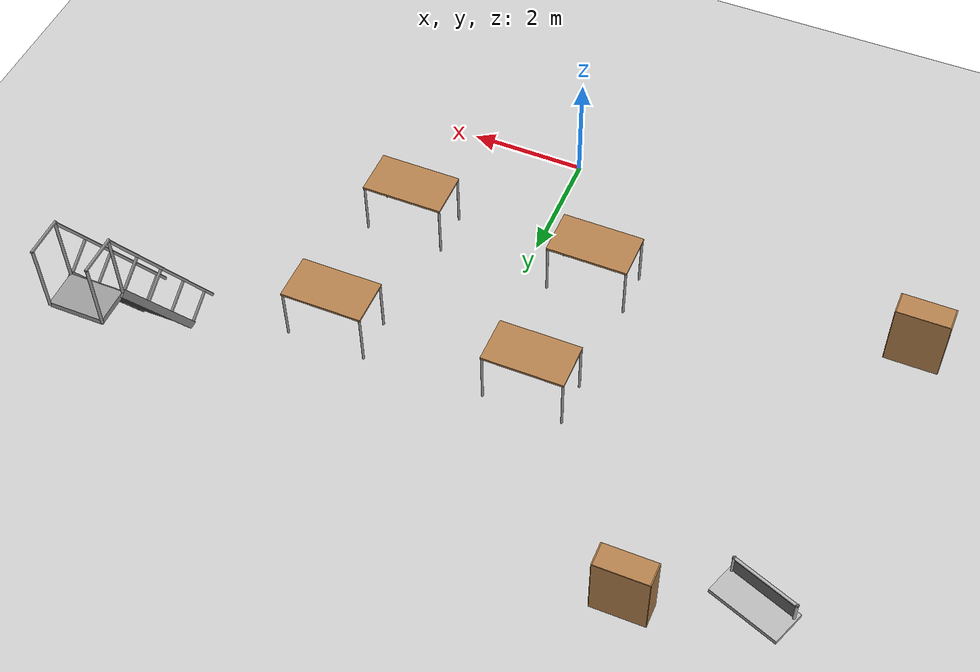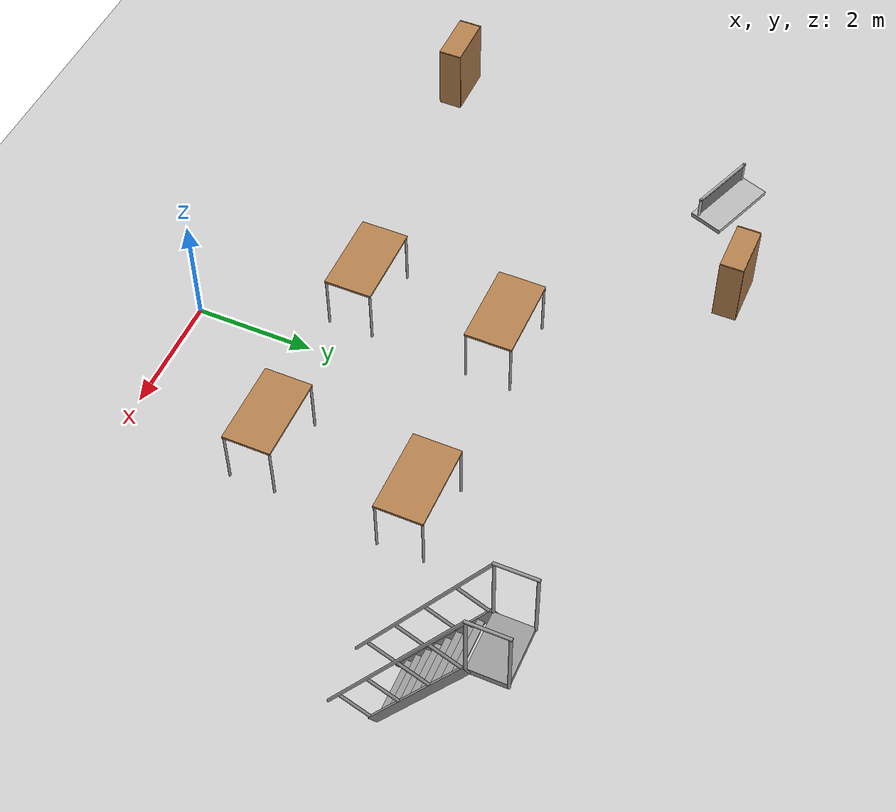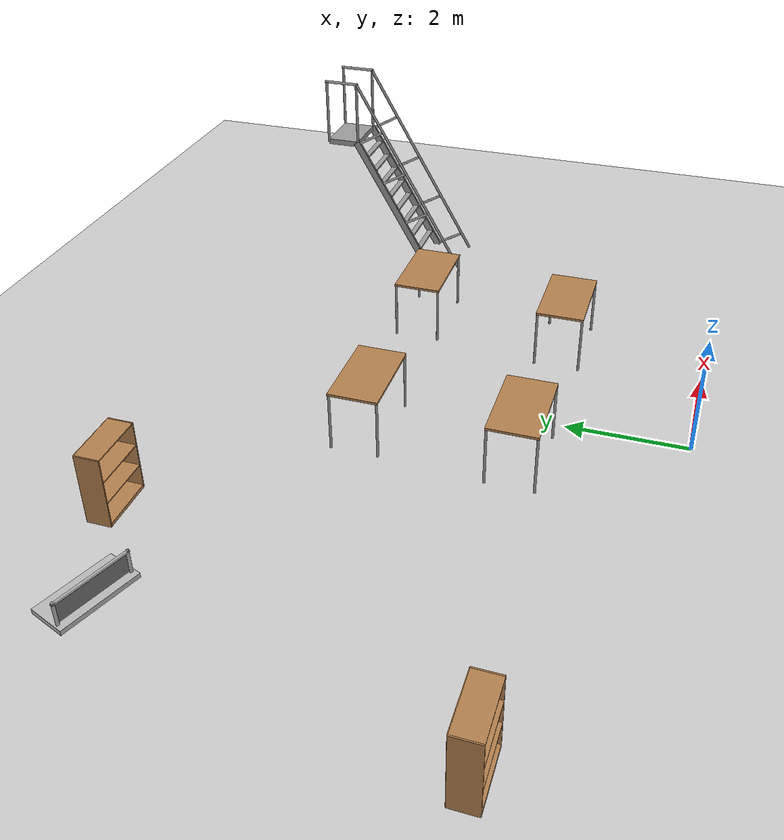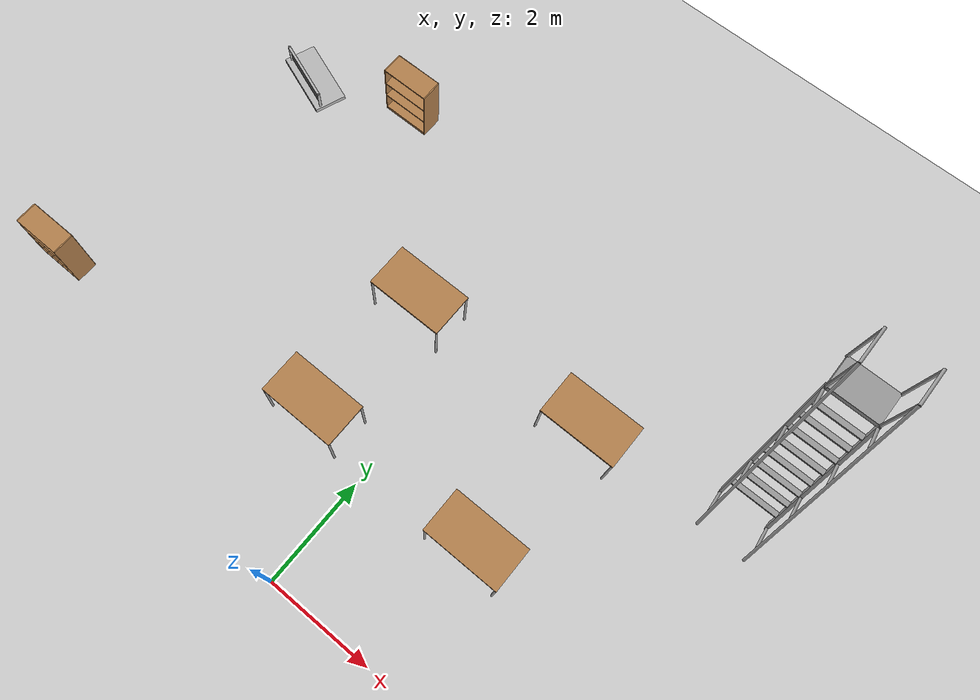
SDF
<sdf version="1.6">
 <world name="default">
  <model name="ground_plane">
   <static>1</static>
   <link name="link">
    <collision name="collision">
     <geometry><plane><normal>0 0 1</normal><size>100 100</size></plane></geometry>
     <surface><friction><ode><mu>100</mu><mu2>50</mu2></ode></friction></surface>
    </collision>
    <visual name="visual">
     <cast_shadows>0</cast_shadows>
     <geometry><plane><normal>0 0 1</normal><size>100 100</size></plane></geometry>
     <material>
      <script><uri>file://media/materials/scripts/gazebo.material</uri><name>Gazebo/Grey</name></script>
     </material>
    </visual>
   </link>
  </model>
  <model name="bookshelf">
   <static>1</static>
   <link name="link">
    <inertial><mass>1</mass></inertial>
    <collision name="back">
     <pose>0 0.005 0.6 0 -0 0</pose>
     <geometry><box><size>0.9 0.01 1.2</size></box></geometry>
    </collision>
    <visual name="visual1">
     <pose>0 0.005 0.6 0 -0 0</pose>
     <geometry><box><size>0.9 0.01 1.2</size></box></geometry>
     <material>
      <script><uri>file://media/materials/scripts/gazebo.material</uri><name>Gazebo/Wood</name></script>
     </material>
    </visual>
    <collision name="left_side">
     <pose>0.45 -0.195 0.6 0 -0 0</pose>
     <geometry><box><size>0.02 0.4 1.2</size></box></geometry>
    </collision>
    <visual name="visual2">
     <pose>0.45 -0.195 0.6 0 -0 0</pose>
     <geometry><box><size>0.02 0.4 1.2</size></box></geometry>
     <material>
      <script><uri>file://media/materials/scripts/gazebo.material</uri><name>Gazebo/Wood</name></script>
     </material>
    </visual>
    <collision name="right_side">
     <pose>-0.45 -0.195 0.6 0 -0 0</pose>
     <geometry><box><size>0.02 0.4 1.2</size></box></geometry>
    </collision>
    <visual name="visual3">
     <pose>-0.45 -0.195 0.6 0 -0 0</pose>
     <geometry><box><size>0.02 0.4 1.2</size></box></geometry>
     <material>
      <script><uri>file://media/materials/scripts/gazebo.material</uri><name>Gazebo/Wood</name></script>
     </material>
    </visual>
    <collision name="bottom">
     <pose>0 -0.195 0.03 0 -0 0</pose>
     <geometry><box><size>0.88 0.4 0.06</size></box></geometry>
    </collision>
    <visual name="visual4">
     <pose>0 -0.195 0.03 0 -0 0</pose>
     <geometry><box><size>0.88 0.4 0.06</size></box></geometry>
     <material>
      <script><uri>file://media/materials/scripts/gazebo.material</uri><name>Gazebo/Wood</name></script>
     </material>
    </visual>
    <collision name="top">
     <pose>0 -0.195 1.19 0 -0 0</pose>
     <geometry><box><size>0.88 0.4 0.02</size></box></geometry>
    </collision>
    <visual name="visual5">
     <pose>0 -0.195 1.19 0 -0 0</pose>
     <geometry><box><size>0.88 0.4 0.02</size></box></geometry>
     <material>
      <script><uri>file://media/materials/scripts/gazebo.material</uri><name>Gazebo/Wood</name></script>
     </material>
    </visual>
    <collision name="low_shelf">
     <pose>0 -0.195 0.43 0 -0 0</pose>
     <geometry><box><size>0.88 0.4 0.02</size></box></geometry>
    </collision>
    <visual name="visual6">
     <pose>0 -0.195 0.43 0 -0 0</pose>
     <geometry><box><size>0.88 0.4 0.02</size></box></geometry>
     <material>
      <script><uri>file://media/materials/scripts/gazebo.material</uri><name>Gazebo/Wood</name></script>
     </material>
    </visual>
    <collision name="high_shelf">
     <pose>0 -0.195 0.8 0 -0 0</pose>
     <geometry><box><size>0.88 0.4 0.02</size></box></geometry>
    </collision>
    <visual name="visual7">
     <pose>0 -0.195 0.8 0 -0 0</pose>
     <geometry><box><size>0.88 0.4 0.02</size></box></geometry>
     <material>
      <script><uri>file://media/materials/scripts/gazebo.material</uri><name>Gazebo/Wood</name></script>
     </material>
    </visual>
   </link>
   <pose>-6.54502 1.97789 0 0 -0 0</pose>
  </model>
  <model name="bookshelf_0">
   <static>1</static>
   <link name="link">
    <inertial><mass>1</mass></inertial>
    <collision name="back">
     <pose>0 0.005 0.6 0 -0 0</pose>
     <geometry><box><size>0.9 0.01 1.2</size></box></geometry>
    </collision>
    <visual name="visual1">
     <pose>0 0.005 0.6 0 -0 0</pose>
     <geometry><box><size>0.9 0.01 1.2</size></box></geometry>
     <material>
      <script><uri>file://media/materials/scripts/gazebo.material</uri><name>Gazebo/Wood</name></script>
     </material>
    </visual>
    <collision name="left_side">
     <pose>0.45 -0.195 0.6 0 -0 0</pose>
     <geometry><box><size>0.02 0.4 1.2</size></box></geometry>
    </collision>
    <visual name="visual2">
     <pose>0.45 -0.195 0.6 0 -0 0</pose>
     <geometry><box><size>0.02 0.4 1.2</size></box></geometry>
     <material>
      <script><uri>file://media/materials/scripts/gazebo.material</uri><name>Gazebo/Wood</name></script>
     </material>
    </visual>
    <collision name="right_side">
     <pose>-0.45 -0.195 0.6 0 -0 0</pose>
     <geometry><box><size>0.02 0.4 1.2</size></box></geometry>
    </collision>
    <visual name="visual3">
     <pose>-0.45 -0.195 0.6 0 -0 0</pose>
     <geometry><box><size>0.02 0.4 1.2</size></box></geometry>
     <material>
      <script><uri>file://media/materials/scripts/gazebo.material</uri><name>Gazebo/Wood</name></script>
     </material>
    </visual>
    <collision name="bottom">
     <pose>0 -0.195 0.03 0 -0 0</pose>
     <geometry><box><size>0.88 0.4 0.06</size></box></geometry>
    </collision>
    <visual name="visual4">
     <pose>0 -0.195 0.03 0 -0 0</pose>
     <geometry><box><size>0.88 0.4 0.06</size></box></geometry>
     <material>
      <script><uri>file://media/materials/scripts/gazebo.material</uri><name>Gazebo/Wood</name></script>
     </material>
    </visual>
    <collision name="top">
     <pose>0 -0.195 1.19 0 -0 0</pose>
     <geometry><box><size>0.88 0.4 0.02</size></box></geometry>
    </collision>
    <visual name="visual5">
     <pose>0 -0.195 1.19 0 -0 0</pose>
     <geometry><box><size>0.88 0.4 0.02</size></box></geometry>
     <material>
      <script><uri>file://media/materials/scripts/gazebo.material</uri><name>Gazebo/Wood</name></script>
     </material>
    </visual>
    <collision name="low_shelf">
     <pose>0 -0.195 0.43 0 -0 0</pose>
     <geometry><box><size>0.88 0.4 0.02</size></box></geometry>
    </collision>
    <visual name="visual6">
     <pose>0 -0.195 0.43 0 -0 0</pose>
     <geometry><box><size>0.88 0.4 0.02</size></box></geometry>
     <material>
      <script><uri>file://media/materials/scripts/gazebo.material</uri><name>Gazebo/Wood</name></script>
     </material>
    </visual>
    <collision name="high_shelf">
     <pose>0 -0.195 0.8 0 -0 0</pose>
     <geometry><box><size>0.88 0.4 0.02</size></box></geometry>
    </collision>
    <visual name="visual7">
     <pose>0 -0.195 0.8 0 -0 0</pose>
     <geometry><box><size>0.88 0.4 0.02</size></box></geometry>
     <material>
      <script><uri>file://media/materials/scripts/gazebo.material</uri><name>Gazebo/Wood</name></script>
     </material>
    </visual>
   </link>
   <pose>-3.77767 8.09982 0 0 -0 0</pose>
  </model>
  <model name="frc2016_lowbar">
   <link name="base">
    <inertial>
     <mass>50</mass>
     <inertia>
      <ixx>0.035543</ixx>
      <ixy>0</ixy>
      <ixz>0</ixz>
      <iyy>0.134412</iyy>
      <iyz>0</iyz>
      <izz>0.165376</izz>
     </inertia>
    </inertial>
    <visual name="platform">
     <pose>0 0 0.039065 0 -0 0</pose>
     <geometry><box><size>1.26 0.5996 0.07813</size></box></geometry>
    </visual>
    <collision name="platform">
     <pose>0 0 0.039065 0 -0 0</pose>
     <geometry><box><size>1.27 0.6096 0.07813</size></box></geometry>
    </collision>
    <visual name="right_column">
     <pose>-0.57845 -0.18464 0.26863 0 -0 0</pose>
     <geometry><cylinder><radius>0.0254</radius><length>0.381</length></cylinder></geometry>
    </visual>
    <collision name="right_column">
     <pose>-0.57845 -0.18464 0.26863 0 -0 0</pose>
     <geometry><cylinder><radius>0.0254</radius><length>0.381</length></cylinder></geometry>
    </collision>
    <visual name="left_column">
     <pose>0.57845 -0.18464 0.26863 0 -0 0</pose>
     <geometry><cylinder><radius>0.0254</radius><length>0.381</length></cylinder></geometry>
    </visual>
    <collision name="left_column">
     <pose>0.57845 -0.18464 0.26863 0 -0 0</pose>
     <geometry><cylinder><radius>0.0254</radius><length>0.381</length></cylinder></geometry>
    </collision>
    <visual name="horizontal">
     <pose>0 -0.18464 0.43556 0 1.5707 0</pose>
     <geometry><cylinder><radius>0.0254</radius><length>1.2018</length></cylinder></geometry>
    </visual>
    <collision name="horizontal">
     <pose>0 -0.18464 0.43556 0 1.5707 0</pose>
     <geometry><cylinder><radius>0.0254</radius><length>1.2018</length></cylinder></geometry>
    </collision>
   </link>
   <link name="wall">
    <pose>0 -0.1778 0.24323 0 -0 0</pose>
    <inertial>
     <mass>1</mass>
     <inertia>
      <ixx>0.00774528</ixx>
      <ixy>0</ixy>
      <ixz>0</ixz>
      <iyy>0.116613</iyy>
      <iyz>0</iyz>
      <izz>0.108874</izz>
     </inertia>
    </inertial>
    <visual name="visual">
     <geometry><box><size>1.1176 0.00635 0.3</size></box></geometry>
     <material><ambient>0.46 0.46 0.46 1</ambient><diffuse>0.46 0.46 0.46 1</diffuse></material>
    </visual>
    <collision name="collision"><geometry><box><size>1.143 0.00635 0.3</size></box></geometry></collision>
   </link>
   <joint name="bar_joint" type="revolute">
    <pose>0 0 0.36378 0 -0 0</pose>
    <parent>base</parent>
    <child>wall</child>
    <axis>
     <xyz>1 0 0</xyz>
     <limit><lower>-1.5707</lower><upper>1.5707</upper></limit>
     <use_parent_model_frame>0</use_parent_model_frame>
     <dynamics><spring_reference>0</spring_reference><spring_stiffness>0</spring_stiffness></dynamics>
    </axis>
   </joint>
   <pose>-5.58311 7.22185 0.149998 1e-06 -6e-06 -0.356761</pose>
  </model>
  <model name="ladder_60deg_2rails">
   <static>1</static>
   <link name="step0">
    <pose>0 0.15396 0.266667 0 -0 0</pose>
    <inertial>
     <mass>9.75482</mass>
     <inertia>
      <ixx>0.00957124</ixx>
      <iyy>0.65963</iyy>
      <izz>0.666842</izz>
      <ixy>0</ixy>
      <ixz>0</ixz>
      <iyz>0</iyz>
     </inertia>
    </inertial>
    <collision name="collision"><geometry><box><size>0.9 0.1016 0.0381</size></box></geometry></collision>
    <visual name="visual">
     <geometry><box><size>0.9 0.1016 0.0381</size></box></geometry>
     <material>
      <script><uri>file://media/materials/scripts/gazebo.material</uri><name>Gazebo/Grey</name></script>
     </material>
    </visual>
   </link>
   <link name="step1">
    <pose>0 0.30792 0.533333 0 -0 0</pose>
    <inertial>
     <mass>9.75482</mass>
     <inertia>
      <ixx>0.00957124</ixx>
      <iyy>0.65963</iyy>
      <izz>0.666842</izz>
      <ixy>0</ixy>
      <ixz>0</ixz>
      <iyz>0</iyz>
     </inertia>
    </inertial>
    <collision name="collision"><geometry><box><size>0.9 0.1016 0.0381</size></box></geometry></collision>
    <visual name="visual">
     <geometry><box><size>0.9 0.1016 0.0381</size></box></geometry>
     <material>
      <script><uri>file://media/materials/scripts/gazebo.material</uri><name>Gazebo/Grey</name></script>
     </material>
    </visual>
   </link>
   <link name="step2">
    <pose>0 0.46188 0.8 0 -0 0</pose>
    <inertial>
     <mass>9.75482</mass>
     <inertia>
      <ixx>0.00957124</ixx>
      <iyy>0.65963</iyy>
      <izz>0.666842</izz>
      <ixy>0</ixy>
      <ixz>0</ixz>
      <iyz>0</iyz>
     </inertia>
    </inertial>
    <collision name="collision"><geometry><box><size>0.9 0.1016 0.0381</size></box></geometry></collision>
    <visual name="visual">
     <geometry><box><size>0.9 0.1016 0.0381</size></box></geometry>
     <material>
      <script><uri>file://media/materials/scripts/gazebo.material</uri><name>Gazebo/Grey</name></script>
     </material>
    </visual>
   </link>
   <link name="step3">
    <pose>0 0.61584 1.06667 0 -0 0</pose>
    <inertial>
     <mass>9.75482</mass>
     <inertia>
      <ixx>0.00957124</ixx>
      <iyy>0.65963</iyy>
      <izz>0.666842</izz>
      <ixy>0</ixy>
      <ixz>0</ixz>
      <iyz>0</iyz>
     </inertia>
    </inertial>
    <collision name="collision"><geometry><box><size>0.9 0.1016 0.0381</size></box></geometry></collision>
    <visual name="visual">
     <geometry><box><size>0.9 0.1016 0.0381</size></box></geometry>
     <material>
      <script><uri>file://media/materials/scripts/gazebo.material</uri><name>Gazebo/Grey</name></script>
     </material>
    </visual>
   </link>
   <link name="step4">
    <pose>0 0.7698 1.33333 0 -0 0</pose>
    <inertial>
     <mass>9.75482</mass>
     <inertia>
      <ixx>0.00957124</ixx>
      <iyy>0.65963</iyy>
      <izz>0.666842</izz>
      <ixy>0</ixy>
      <ixz>0</ixz>
      <iyz>0</iyz>
     </inertia>
    </inertial>
    <collision name="collision"><geometry><box><size>0.9 0.1016 0.0381</size></box></geometry></collision>
    <visual name="visual">
     <geometry><box><size>0.9 0.1016 0.0381</size></box></geometry>
     <material>
      <script><uri>file://media/materials/scripts/gazebo.material</uri><name>Gazebo/Grey</name></script>
     </material>
    </visual>
   </link>
   <link name="step5">
    <pose>0 0.92376 1.6 0 -0 0</pose>
    <inertial>
     <mass>9.75482</mass>
     <inertia>
      <ixx>0.00957124</ixx>
      <iyy>0.65963</iyy>
      <izz>0.666842</izz>
      <ixy>0</ixy>
      <ixz>0</ixz>
      <iyz>0</iyz>
     </inertia>
    </inertial>
    <collision name="collision"><geometry><box><size>0.9 0.1016 0.0381</size></box></geometry></collision>
    <visual name="visual">
     <geometry><box><size>0.9 0.1016 0.0381</size></box></geometry>
     <material>
      <script><uri>file://media/materials/scripts/gazebo.material</uri><name>Gazebo/Grey</name></script>
     </material>
    </visual>
   </link>
   <link name="step6">
    <pose>0 1.07772 1.86667 0 -0 0</pose>
    <inertial>
     <mass>9.75482</mass>
     <inertia>
      <ixx>0.00957124</ixx>
      <iyy>0.65963</iyy>
      <izz>0.666842</izz>
      <ixy>0</ixy>
      <ixz>0</ixz>
      <iyz>0</iyz>
     </inertia>
    </inertial>
    <collision name="collision"><geometry><box><size>0.9 0.1016 0.0381</size></box></geometry></collision>
    <visual name="visual">
     <geometry><box><size>0.9 0.1016 0.0381</size></box></geometry>
     <material>
      <script><uri>file://media/materials/scripts/gazebo.material</uri><name>Gazebo/Grey</name></script>
     </material>
    </visual>
   </link>
   <link name="step7">
    <pose>0 1.23168 2.13333 0 -0 0</pose>
    <inertial>
     <mass>9.75482</mass>
     <inertia>
      <ixx>0.00957124</ixx>
      <iyy>0.65963</iyy>
      <izz>0.666842</izz>
      <ixy>0</ixy>
      <ixz>0</ixz>
      <iyz>0</iyz>
     </inertia>
    </inertial>
    <collision name="collision"><geometry><box><size>0.9 0.1016 0.0381</size></box></geometry></collision>
    <visual name="visual">
     <geometry><box><size>0.9 0.1016 0.0381</size></box></geometry>
     <material>
      <script><uri>file://media/materials/scripts/gazebo.material</uri><name>Gazebo/Grey</name></script>
     </material>
    </visual>
   </link>
   <link name="landing">
    <pose>0 1.68564 2.4 0 -0 0</pose>
    <inertial>
     <mass>57.6072</mass>
     <inertia><ixx>1.73518</ixx><iyy>3.89545</iyy><izz>5.6167</izz><ixy>0</ixy><ixz>0</ixz><iyz>0</iyz></inertia>
    </inertial>
    <collision name="collision"><geometry><box><size>0.9 0.6 0.1016</size></box></geometry></collision>
    <visual name="visual">
     <geometry><box><size>0.9 0.6 0.1016</size></box></geometry>
     <material>
      <script><uri>file://media/materials/scripts/gazebo.material</uri><name>Gazebo/Grey</name></script>
     </material>
    </visual>
   </link>
   <link name="left_side_wall">
    <pose>-0.45 0.69282 1.2 1.0472 -0 0</pose>
    <collision name="collision"><geometry><box><size>0.0508 2.85128 0.13</size></box></geometry></collision>
    <visual name="visual">
     <geometry><box><size>0.0508 2.85128 0.13</size></box></geometry>
     <material>
      <script><uri>file://media/materials/scripts/gazebo.material</uri><name>Gazebo/Grey</name></script>
     </material>
    </visual>
   </link>
   <link name="right_side_wall">
    <pose>0.45 0.69282 1.2 1.0472 -0 0</pose>
    <collision name="collision"><geometry><box><size>0.0508 2.85128 0.13</size></box></geometry></collision>
    <visual name="visual">
     <geometry><box><size>0.0508 2.85128 0.13</size></box></geometry>
     <material>
      <script><uri>file://media/materials/scripts/gazebo.material</uri><name>Gazebo/Grey</name></script>
     </material>
    </visual>
   </link>
   <link name="left_railing_long">
    <pose>-0.45 0.34282 1.80622 -0.523599 0 0</pose>
    <collision name="collision">
     <geometry><cylinder><radius>0.02413</radius><length>4.17128</length></cylinder></geometry>
    </collision>
    <visual name="visual">
     <geometry><cylinder><radius>0.02413</radius><length>4.17128</length></cylinder></geometry>
     <material>
      <script><uri>file://media/materials/scripts/gazebo.material</uri><name>Gazebo/Grey</name></script>
     </material>
    </visual>
   </link>
   <link name="left_railing_upright0">
    <pose>-0.45 -0.274963 0.15875 1.0472 -0 0</pose>
    <collision name="collision">
     <geometry><cylinder><radius>0.02413</radius><length>0.541218</length></cylinder></geometry>
    </collision>
    <visual name="visual">
     <geometry><cylinder><radius>0.02413</radius><length>0.541218</length></cylinder></geometry>
     <material>
      <script><uri>file://media/materials/scripts/gazebo.material</uri><name>Gazebo/Grey</name></script>
     </material>
    </visual>
   </link>
   <link name="left_railing_upright1">
    <pose>-0.45 0.186917 0.95875 1.0472 -0 0</pose>
    <collision name="collision">
     <geometry><cylinder><radius>0.02413</radius><length>0.541218</length></cylinder></geometry>
    </collision>
    <visual name="visual">
     <geometry><cylinder><radius>0.02413</radius><length>0.541218</length></cylinder></geometry>
     <material>
      <script><uri>file://media/materials/scripts/gazebo.material</uri><name>Gazebo/Grey</name></script>
     </material>
    </visual>
   </link>
   <link name="left_railing_upright2">
    <pose>-0.45 0.648797 1.75875 1.0472 -0 0</pose>
    <collision name="collision">
     <geometry><cylinder><radius>0.02413</radius><length>0.541218</length></cylinder></geometry>
    </collision>
    <visual name="visual">
     <geometry><cylinder><radius>0.02413</radius><length>0.541218</length></cylinder></geometry>
     <material>
      <script><uri>file://media/materials/scripts/gazebo.material</uri><name>Gazebo/Grey</name></script>
     </material>
    </visual>
   </link>
   <link name="left_railing_upright3">
    <pose>-0.45 1.11068 2.55875 1.0472 -0 0</pose>
    <collision name="collision">
     <geometry><cylinder><radius>0.02413</radius><length>0.541218</length></cylinder></geometry>
    </collision>
    <visual name="visual">
     <geometry><cylinder><radius>0.02413</radius><length>0.541218</length></cylinder></geometry>
     <material>
      <script><uri>file://media/materials/scripts/gazebo.material</uri><name>Gazebo/Grey</name></script>
     </material>
    </visual>
   </link>
   <link name="left_railing_landing_top">
    <pose>-0.45 1.68564 3.61244 1.5708 -0 0</pose>
    <collision name="collision">
     <geometry><cylinder><radius>0.02413</radius><length>0.64826</length></cylinder></geometry>
    </collision>
    <visual name="visual">
     <geometry><cylinder><radius>0.02413</radius><length>0.64826</length></cylinder></geometry>
     <material>
      <script><uri>file://media/materials/scripts/gazebo.material</uri><name>Gazebo/Grey</name></script>
     </material>
    </visual>
   </link>
   <link name="left_railing_landing_upright_0">
    <pose>-0.45 1.38564 3.00622 0 -0 0</pose>
    <collision name="collision">
     <geometry><cylinder><radius>0.02413</radius><length>1.21244</length></cylinder></geometry>
    </collision>
    <visual name="visual">
     <geometry><cylinder><radius>0.02413</radius><length>1.21244</length></cylinder></geometry>
     <material>
      <script><uri>file://media/materials/scripts/gazebo.material</uri><name>Gazebo/Grey</name></script>
     </material>
    </visual>
   </link>
   <link name="left_railing_landing_upright_1">
    <pose>-0.45 1.98564 3.00622 0 -0 0</pose>
    <collision name="collision">
     <geometry><cylinder><radius>0.02413</radius><length>1.21244</length></cylinder></geometry>
    </collision>
    <visual name="visual">
     <geometry><cylinder><radius>0.02413</radius><length>1.21244</length></cylinder></geometry>
     <material>
      <script><uri>file://media/materials/scripts/gazebo.material</uri><name>Gazebo/Grey</name></script>
     </material>
    </visual>
   </link>
   <link name="right_railing_long">
    <pose>0.45 0.34282 1.80622 -0.523599 0 0</pose>
    <collision name="collision">
     <geometry><cylinder><radius>0.02413</radius><length>4.17128</length></cylinder></geometry>
    </collision>
    <visual name="visual">
     <geometry><cylinder><radius>0.02413</radius><length>4.17128</length></cylinder></geometry>
     <material>
      <script><uri>file://media/materials/scripts/gazebo.material</uri><name>Gazebo/Grey</name></script>
     </material>
    </visual>
   </link>
   <link name="right_railing_upright0">
    <pose>0.45 -0.274963 0.15875 1.0472 -0 0</pose>
    <collision name="collision">
     <geometry><cylinder><radius>0.02413</radius><length>0.541218</length></cylinder></geometry>
    </collision>
    <visual name="visual">
     <geometry><cylinder><radius>0.02413</radius><length>0.541218</length></cylinder></geometry>
     <material>
      <script><uri>file://media/materials/scripts/gazebo.material</uri><name>Gazebo/Grey</name></script>
     </material>
    </visual>
   </link>
   <link name="right_railing_upright1">
    <pose>0.45 0.186917 0.95875 1.0472 -0 0</pose>
    <collision name="collision">
     <geometry><cylinder><radius>0.02413</radius><length>0.541218</length></cylinder></geometry>
    </collision>
    <visual name="visual">
     <geometry><cylinder><radius>0.02413</radius><length>0.541218</length></cylinder></geometry>
     <material>
      <script><uri>file://media/materials/scripts/gazebo.material</uri><name>Gazebo/Grey</name></script>
     </material>
    </visual>
   </link>
   <link name="right_railing_upright2">
    <pose>0.45 0.648797 1.75875 1.0472 -0 0</pose>
    <collision name="collision">
     <geometry><cylinder><radius>0.02413</radius><length>0.541218</length></cylinder></geometry>
    </collision>
    <visual name="visual">
     <geometry><cylinder><radius>0.02413</radius><length>0.541218</length></cylinder></geometry>
     <material>
      <script><uri>file://media/materials/scripts/gazebo.material</uri><name>Gazebo/Grey</name></script>
     </material>
    </visual>
   </link>
   <link name="right_railing_upright3">
    <pose>0.45 1.11068 2.55875 1.0472 -0 0</pose>
    <collision name="collision">
     <geometry><cylinder><radius>0.02413</radius><length>0.541218</length></cylinder></geometry>
    </collision>
    <visual name="visual">
     <geometry><cylinder><radius>0.02413</radius><length>0.541218</length></cylinder></geometry>
     <material>
      <script><uri>file://media/materials/scripts/gazebo.material</uri><name>Gazebo/Grey</name></script>
     </material>
    </visual>
   </link>
   <link name="right_railing_landing_top">
    <pose>0.45 1.68564 3.61244 1.5708 -0 0</pose>
    <collision name="collision">
     <geometry><cylinder><radius>0.02413</radius><length>0.64826</length></cylinder></geometry>
    </collision>
    <visual name="visual">
     <geometry><cylinder><radius>0.02413</radius><length>0.64826</length></cylinder></geometry>
     <material>
      <script><uri>file://media/materials/scripts/gazebo.material</uri><name>Gazebo/Grey</name></script>
     </material>
    </visual>
   </link>
   <link name="right_railing_landing_upright_0">
    <pose>0.45 1.38564 3.00622 0 -0 0</pose>
    <collision name="collision">
     <geometry><cylinder><radius>0.02413</radius><length>1.21244</length></cylinder></geometry>
    </collision>
    <visual name="visual">
     <geometry><cylinder><radius>0.02413</radius><length>1.21244</length></cylinder></geometry>
     <material>
      <script><uri>file://media/materials/scripts/gazebo.material</uri><name>Gazebo/Grey</name></script>
     </material>
    </visual>
   </link>
   <link name="right_railing_landing_upright_1">
    <pose>0.45 1.98564 3.00622 0 -0 0</pose>
    <collision name="collision">
     <geometry><cylinder><radius>0.02413</radius><length>1.21244</length></cylinder></geometry>
    </collision>
    <visual name="visual">
     <geometry><cylinder><radius>0.02413</radius><length>1.21244</length></cylinder></geometry>
     <material>
      <script><uri>file://media/materials/scripts/gazebo.material</uri><name>Gazebo/Grey</name></script>
     </material>
    </visual>
   </link>
   <pose>5.07489 5.75667 0 0 -0 0</pose>
  </model>
  <model name="table_0">
   <static>0</static>
   <link name="link">
    <collision name="surface">
     <pose>0 0 1 0 -0 0</pose>
     <geometry><box><size>1.5 0.8 0.03</size></box></geometry>
     <surface><friction><ode><mu>0.6</mu><mu2>0.6</mu2></ode></friction></surface>
    </collision>
    <visual name="visual1">
     <pose>0 0 1 0 -0 0</pose>
     <geometry><box><size>1.4 0.8 0.04</size></box></geometry>
     <material>
      <script><uri>file://media/materials/scripts/gazebo.material</uri><name>Gazebo/Wood</name></script>
     </material>
    </visual>
    <collision name="front_left_leg">
     <pose>0.68 0.38 0.5 0 -0 0</pose>
     <geometry><cylinder><radius>0.02</radius><length>1</length></cylinder></geometry>
    </collision>
    <visual name="front_left_leg">
     <pose>0.68 0.38 0.5 0 -0 0</pose>
     <geometry><cylinder><radius>0.02</radius><length>1</length></cylinder></geometry>
     <material>
      <script><uri>file://media/materials/scripts/gazebo.material</uri><name>Gazebo/Grey</name></script>
     </material>
    </visual>
    <collision name="front_right_leg">
     <pose>0.68 -0.38 0.5 0 -0 0</pose>
     <geometry><cylinder><radius>0.02</radius><length>1</length></cylinder></geometry>
    </collision>
    <visual name="front_right_leg">
     <pose>0.68 -0.38 0.5 0 -0 0</pose>
     <geometry><cylinder><radius>0.02</radius><length>1</length></cylinder></geometry>
     <material>
      <script><uri>file://media/materials/scripts/gazebo.material</uri><name>Gazebo/Grey</name></script>
     </material>
    </visual>
    <collision name="back_right_leg">
     <pose>-0.68 -0.38 0.5 0 -0 0</pose>
     <geometry><cylinder><radius>0.02</radius><length>1</length></cylinder></geometry>
    </collision>
    <visual name="back_right_leg">
     <pose>-0.68 -0.38 0.5 0 -0 0</pose>
     <geometry><cylinder><radius>0.02</radius><length>1</length></cylinder></geometry>
     <material>
      <script><uri>file://media/materials/scripts/gazebo.material</uri><name>Gazebo/Grey</name></script>
     </material>
    </visual>
    <collision name="back_left_leg">
     <pose>-0.68 0.38 0.5 0 -0 0</pose>
     <geometry><cylinder><radius>0.02</radius><length>1</length></cylinder></geometry>
    </collision>
    <visual name="back_left_leg">
     <pose>-0.68 0.38 0.5 0 -0 0</pose>
     <geometry><cylinder><radius>0.02</radius><length>1</length></cylinder></geometry>
     <material>
      <script><uri>file://media/materials/scripts/gazebo.material</uri><name>Gazebo/Grey</name></script>
     </material>
    </visual>
    <inertial>
     <inertia><ixx>1</ixx><ixy>0</ixy><ixz>0</ixz><iyy>1</iyy><iyz>0</iyz><izz>1</izz></inertia>
     <mass>1</mass>
    </inertial>
   </link>
   <pose>2.3276 5.00095 0.149991 0 -0 0</pose>
  </model>
  <model name="table_1">
   <static>0</static>
   <link name="link">
    <collision name="surface">
     <pose>0 0 1 0 -0 0</pose>
     <geometry><box><size>1.5 0.8 0.03</size></box></geometry>
     <surface><friction><ode><mu>0.6</mu><mu2>0.6</mu2></ode></friction></surface>
    </collision>
    <visual name="visual1">
     <pose>0 0 1 0 -0 0</pose>
     <geometry><box><size>1.4 0.8 0.04</size></box></geometry>
     <material>
      <script><uri>file://media/materials/scripts/gazebo.material</uri><name>Gazebo/Wood</name></script>
     </material>
    </visual>
    <collision name="front_left_leg">
     <pose>0.68 0.38 0.5 0 -0 0</pose>
     <geometry><cylinder><radius>0.02</radius><length>1</length></cylinder></geometry>
    </collision>
    <visual name="front_left_leg">
     <pose>0.68 0.38 0.5 0 -0 0</pose>
     <geometry><cylinder><radius>0.02</radius><length>1</length></cylinder></geometry>
     <material>
      <script><uri>file://media/materials/scripts/gazebo.material</uri><name>Gazebo/Grey</name></script>
     </material>
    </visual>
    <collision name="front_right_leg">
     <pose>0.68 -0.38 0.5 0 -0 0</pose>
     <geometry><cylinder><radius>0.02</radius><length>1</length></cylinder></geometry>
    </collision>
    <visual name="front_right_leg">
     <pose>0.68 -0.38 0.5 0 -0 0</pose>
     <geometry><cylinder><radius>0.02</radius><length>1</length></cylinder></geometry>
     <material>
      <script><uri>file://media/materials/scripts/gazebo.material</uri><name>Gazebo/Grey</name></script>
     </material>
    </visual>
    <collision name="back_right_leg">
     <pose>-0.68 -0.38 0.5 0 -0 0</pose>
     <geometry><cylinder><radius>0.02</radius><length>1</length></cylinder></geometry>
    </collision>
    <visual name="back_right_leg">
     <pose>-0.68 -0.38 0.5 0 -0 0</pose>
     <geometry><cylinder><radius>0.02</radius><length>1</length></cylinder></geometry>
     <material>
      <script><uri>file://media/materials/scripts/gazebo.material</uri><name>Gazebo/Grey</name></script>
     </material>
    </visual>
    <collision name="back_left_leg">
     <pose>-0.68 0.38 0.5 0 -0 0</pose>
     <geometry><cylinder><radius>0.02</radius><length>1</length></cylinder></geometry>
    </collision>
    <visual name="back_left_leg">
     <pose>-0.68 0.38 0.5 0 -0 0</pose>
     <geometry><cylinder><radius>0.02</radius><length>1</length></cylinder></geometry>
     <material>
      <script><uri>file://media/materials/scripts/gazebo.material</uri><name>Gazebo/Grey</name></script>
     </material>
    </visual>
    <inertial>
     <inertia><ixx>1</ixx><ixy>0</ixy><ixz>0</ixz><iyy>1</iyy><iyz>0</iyz><izz>1</izz></inertia>
     <mass>1</mass>
    </inertial>
   </link>
   <pose>-1.10295 4.93575 0.15 0 -0 0</pose>
  </model>
  <model name="table_2">
   <static>0</static>
   <link name="link">
    <collision name="surface">
     <pose>0 0 1 0 -0 0</pose>
     <geometry><box><size>1.5 0.8 0.03</size></box></geometry>
     <surface><friction><ode><mu>0.6</mu><mu2>0.6</mu2></ode></friction></surface>
    </collision>
    <visual name="visual1">
     <pose>0 0 1 0 -0 0</pose>
     <geometry><box><size>1.4 0.8 0.04</size></box></geometry>
     <material>
      <script><uri>file://media/materials/scripts/gazebo.material</uri><name>Gazebo/Wood</name></script>
     </material>
    </visual>
    <collision name="front_left_leg">
     <pose>0.68 0.38 0.5 0 -0 0</pose>
     <geometry><cylinder><radius>0.02</radius><length>1</length></cylinder></geometry>
    </collision>
    <visual name="front_left_leg">
     <pose>0.68 0.38 0.5 0 -0 0</pose>
     <geometry><cylinder><radius>0.02</radius><length>1</length></cylinder></geometry>
     <material>
      <script><uri>file://media/materials/scripts/gazebo.material</uri><name>Gazebo/Grey</name></script>
     </material>
    </visual>
    <collision name="front_right_leg">
     <pose>0.68 -0.38 0.5 0 -0 0</pose>
     <geometry><cylinder><radius>0.02</radius><length>1</length></cylinder></geometry>
    </collision>
    <visual name="front_right_leg">
     <pose>0.68 -0.38 0.5 0 -0 0</pose>
     <geometry><cylinder><radius>0.02</radius><length>1</length></cylinder></geometry>
     <material>
      <script><uri>file://media/materials/scripts/gazebo.material</uri><name>Gazebo/Grey</name></script>
     </material>
    </visual>
    <collision name="back_right_leg">
     <pose>-0.68 -0.38 0.5 0 -0 0</pose>
     <geometry><cylinder><radius>0.02</radius><length>1</length></cylinder></geometry>
    </collision>
    <visual name="back_right_leg">
     <pose>-0.68 -0.38 0.5 0 -0 0</pose>
     <geometry><cylinder><radius>0.02</radius><length>1</length></cylinder></geometry>
     <material>
      <script><uri>file://media/materials/scripts/gazebo.material</uri><name>Gazebo/Grey</name></script>
     </material>
    </visual>
    <collision name="back_left_leg">
     <pose>-0.68 0.38 0.5 0 -0 0</pose>
     <geometry><cylinder><radius>0.02</radius><length>1</length></cylinder></geometry>
    </collision>
    <visual name="back_left_leg">
     <pose>-0.68 0.38 0.5 0 -0 0</pose>
     <geometry><cylinder><radius>0.02</radius><length>1</length></cylinder></geometry>
     <material>
      <script><uri>file://media/materials/scripts/gazebo.material</uri><name>Gazebo/Grey</name></script>
     </material>
    </visual>
    <inertial>
     <inertia><ixx>1</ixx><ixy>0</ixy><ixz>0</ixz><iyy>1</iyy><iyz>0</iyz><izz>1</izz></inertia>
     <mass>1</mass>
    </inertial>
   </link>
   <pose>2.11194 2.43198 0.15 0 -0 0</pose>
  </model>
  <model name="table_3">
   <static>0</static>
   <link name="link">
    <collision name="surface">
     <pose>0 0 1 0 -0 0</pose>
     <geometry><box><size>1.5 0.8 0.03</size></box></geometry>
     <surface><friction><ode><mu>0.6</mu><mu2>0.6</mu2></ode></friction></surface>
    </collision>
    <visual name="visual1">
     <pose>0 0 1 0 -0 0</pose>
     <geometry><box><size>1.4 0.8 0.04</size></box></geometry>
     <material>
      <script><uri>file://media/materials/scripts/gazebo.material</uri><name>Gazebo/Wood</name></script>
     </material>
    </visual>
    <collision name="front_left_leg">
     <pose>0.68 0.38 0.5 0 -0 0</pose>
     <geometry><cylinder><radius>0.02</radius><length>1</length></cylinder></geometry>
    </collision>
    <visual name="front_left_leg">
     <pose>0.68 0.38 0.5 0 -0 0</pose>
     <geometry><cylinder><radius>0.02</radius><length>1</length></cylinder></geometry>
     <material>
      <script><uri>file://media/materials/scripts/gazebo.material</uri><name>Gazebo/Grey</name></script>
     </material>
    </visual>
    <collision name="front_right_leg">
     <pose>0.68 -0.38 0.5 0 -0 0</pose>
     <geometry><cylinder><radius>0.02</radius><length>1</length></cylinder></geometry>
    </collision>
    <visual name="front_right_leg">
     <pose>0.68 -0.38 0.5 0 -0 0</pose>
     <geometry><cylinder><radius>0.02</radius><length>1</length></cylinder></geometry>
     <material>
      <script><uri>file://media/materials/scripts/gazebo.material</uri><name>Gazebo/Grey</name></script>
     </material>
    </visual>
    <collision name="back_right_leg">
     <pose>-0.68 -0.38 0.5 0 -0 0</pose>
     <geometry><cylinder><radius>0.02</radius><length>1</length></cylinder></geometry>
    </collision>
    <visual name="back_right_leg">
     <pose>-0.68 -0.38 0.5 0 -0 0</pose>
     <geometry><cylinder><radius>0.02</radius><length>1</length></cylinder></geometry>
     <material>
      <script><uri>file://media/materials/scripts/gazebo.material</uri><name>Gazebo/Grey</name></script>
     </material>
    </visual>
    <collision name="back_left_leg">
     <pose>-0.68 0.38 0.5 0 -0 0</pose>
     <geometry><cylinder><radius>0.02</radius><length>1</length></cylinder></geometry>
    </collision>
    <visual name="back_left_leg">
     <pose>-0.68 0.38 0.5 0 -0 0</pose>
     <geometry><cylinder><radius>0.02</radius><length>1</length></cylinder></geometry>
     <material>
      <script><uri>file://media/materials/scripts/gazebo.material</uri><name>Gazebo/Grey</name></script>
     </material>
    </visual>
    <inertial>
     <inertia><ixx>1</ixx><ixy>0</ixy><ixz>0</ixz><iyy>1</iyy><iyz>0</iyz><izz>1</izz></inertia>
     <mass>1</mass>
    </inertial>
   </link>
   <pose>-1.21071 2.48243 0.15 0 -0 0</pose>
  </model>
 </world>
</sdf>
